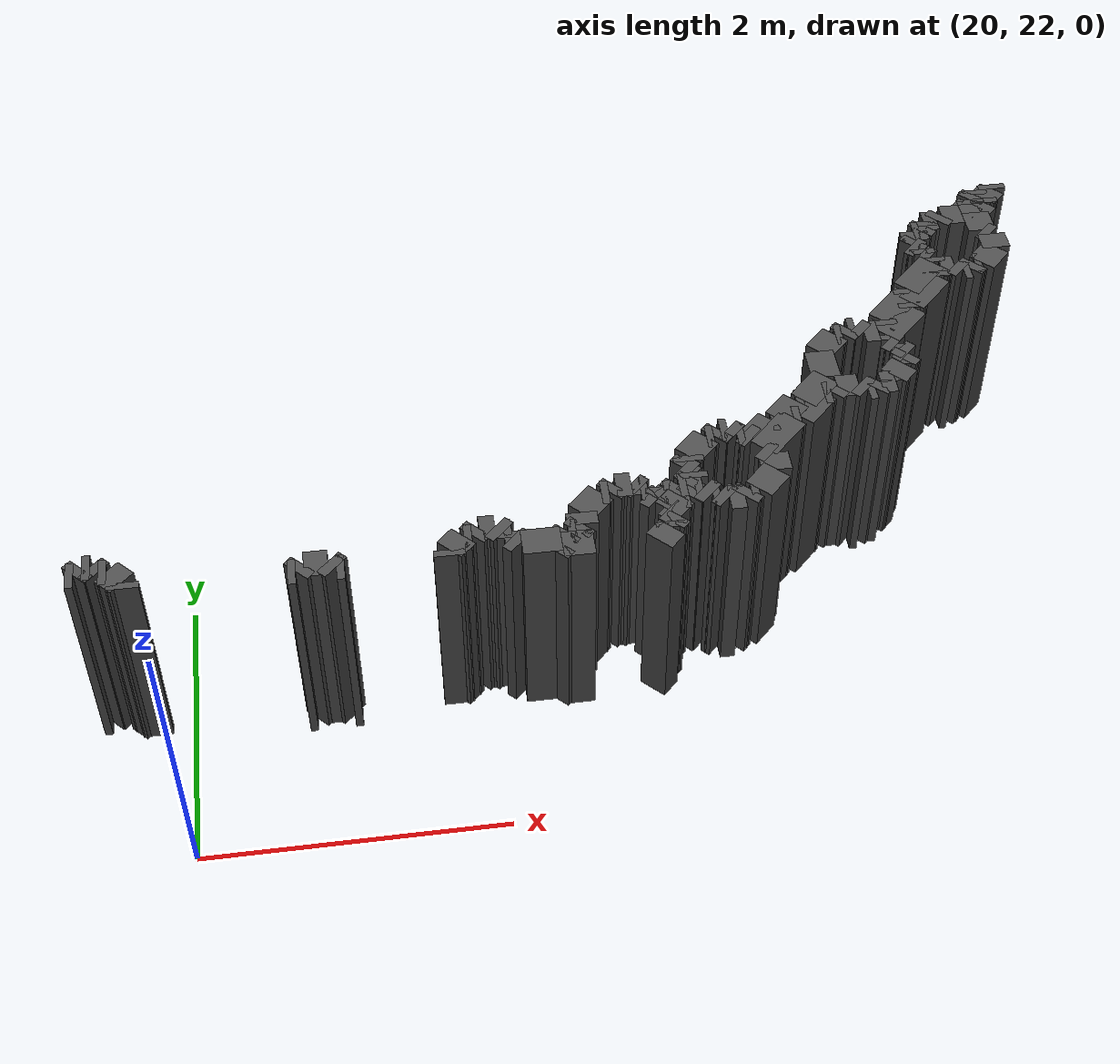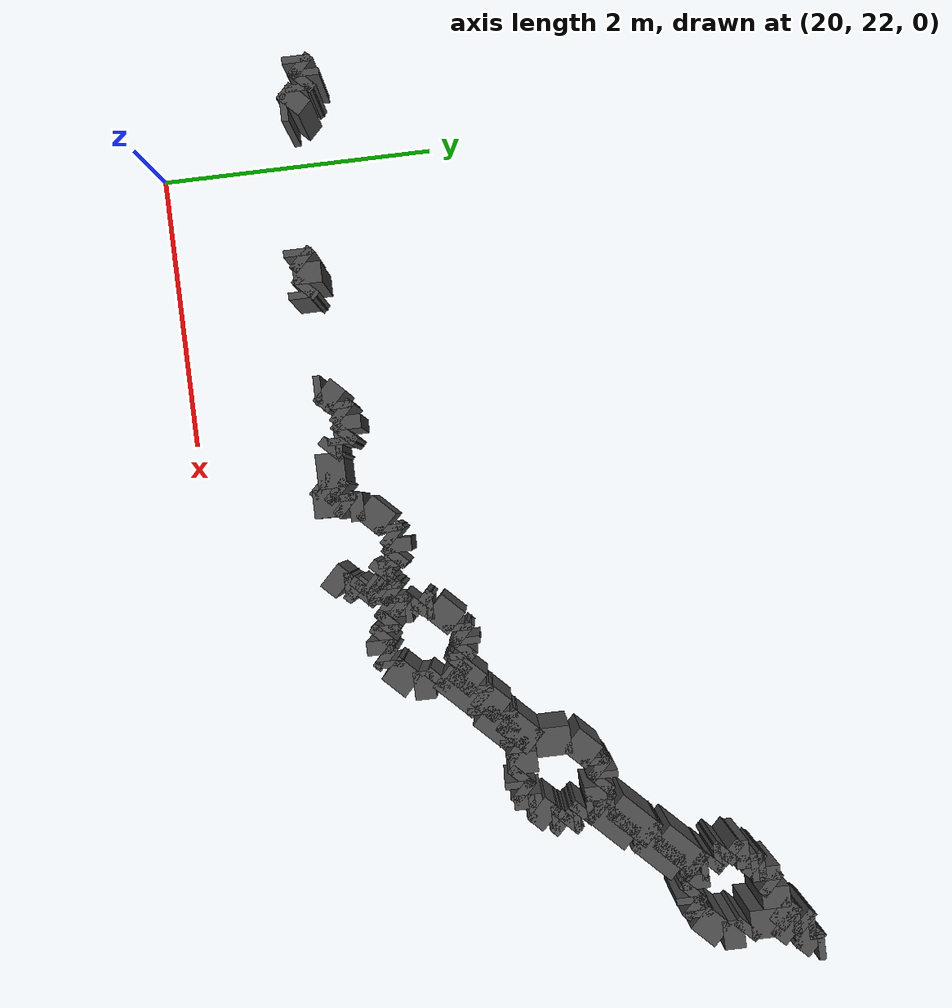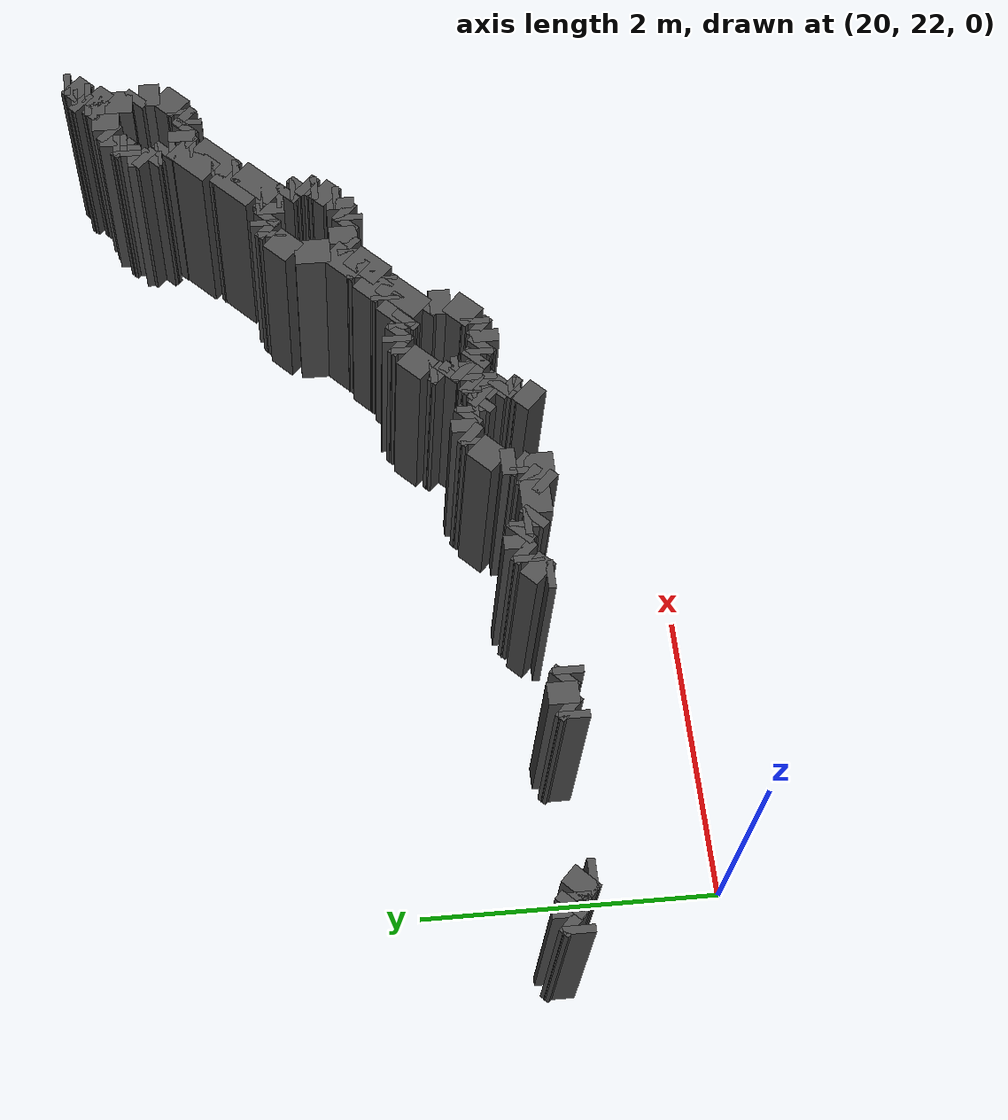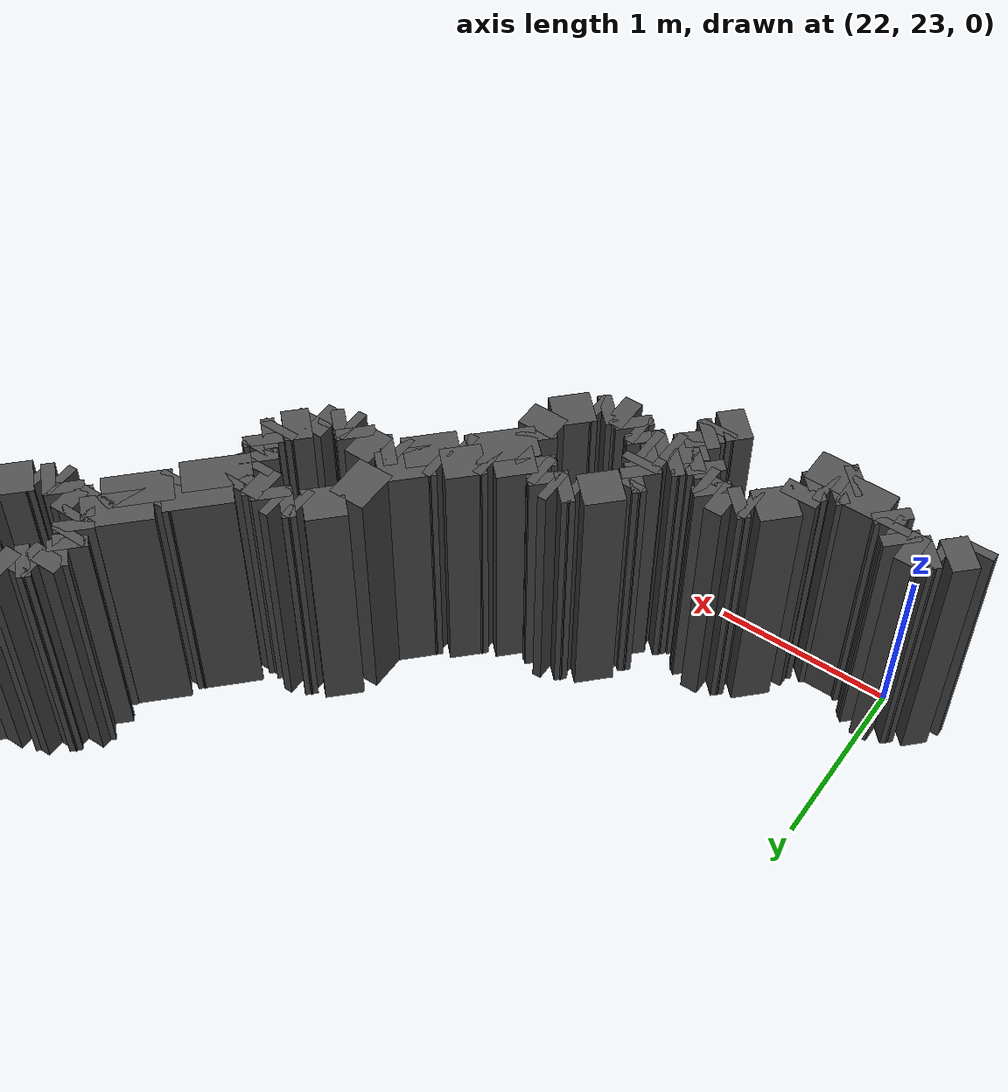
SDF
<sdf version="1.9">
 <model name="generated_walls">
  <static>true</static>
  <link name="wall_161_1902">
   <pose>19.425 23.150 0.75 0 0 0.000</pose>
   <collision name="collision"><geometry><box><size>0.050 0.2 1.5</size></box></geometry></collision>
   <visual name="visual">
    <geometry><box><size>0.050 0.2 1.5</size></box></geometry>
    <material><ambient>0.3 0.3 0.3 1</ambient></material>
   </visual>
  </link>
  <link name="wall_161_1903">
   <pose>19.475 23.175 0.75 0 0 0.785</pose>
   <collision name="collision"><geometry><box><size>0.071 0.2 1.5</size></box></geometry></collision>
   <visual name="visual">
    <geometry><box><size>0.071 0.2 1.5</size></box></geometry>
    <material><ambient>0.3 0.3 0.3 1</ambient></material>
   </visual>
  </link>
  <link name="wall_161_1904">
   <pose>19.525 23.200 0.75 0 0 0.000</pose>
   <collision name="collision"><geometry><box><size>0.050 0.2 1.5</size></box></geometry></collision>
   <visual name="visual">
    <geometry><box><size>0.050 0.2 1.5</size></box></geometry>
    <material><ambient>0.3 0.3 0.3 1</ambient></material>
   </visual>
  </link>
  <link name="wall_161_1905">
   <pose>19.575 23.175 0.75 0 0 -0.785</pose>
   <collision name="collision"><geometry><box><size>0.071 0.2 1.5</size></box></geometry></collision>
   <visual name="visual">
    <geometry><box><size>0.071 0.2 1.5</size></box></geometry>
    <material><ambient>0.3 0.3 0.3 1</ambient></material>
   </visual>
  </link>
  <link name="wall_161_1906">
   <pose>19.625 23.150 0.75 0 0 0.000</pose>
   <collision name="collision"><geometry><box><size>0.050 0.2 1.5</size></box></geometry></collision>
   <visual name="visual">
    <geometry><box><size>0.050 0.2 1.5</size></box></geometry>
    <material><ambient>0.3 0.3 0.3 1</ambient></material>
   </visual>
  </link>
  <link name="wall_161_1907">
   <pose>19.700 23.100 0.75 0 0 -0.785</pose>
   <collision name="collision"><geometry><box><size>0.141 0.2 1.5</size></box></geometry></collision>
   <visual name="visual">
    <geometry><box><size>0.141 0.2 1.5</size></box></geometry>
    <material><ambient>0.3 0.3 0.3 1</ambient></material>
   </visual>
  </link>
  <link name="wall_161_1908">
   <pose>19.750 23.025 0.75 0 0 -1.571</pose>
   <collision name="collision"><geometry><box><size>0.050 0.2 1.5</size></box></geometry></collision>
   <visual name="visual">
    <geometry><box><size>0.050 0.2 1.5</size></box></geometry>
    <material><ambient>0.3 0.3 0.3 1</ambient></material>
   </visual>
  </link>
  <link name="wall_161_1914">
   <pose>20.775 23.000 0.75 0 0 0.000</pose>
   <collision name="collision"><geometry><box><size>0.050 0.2 1.5</size></box></geometry></collision>
   <visual name="visual">
    <geometry><box><size>0.050 0.2 1.5</size></box></geometry>
    <material><ambient>0.3 0.3 0.3 1</ambient></material>
   </visual>
  </link>
  <link name="wall_161_1915">
   <pose>20.825 23.025 0.75 0 0 0.785</pose>
   <collision name="collision"><geometry><box><size>0.071 0.2 1.5</size></box></geometry></collision>
   <visual name="visual">
    <geometry><box><size>0.071 0.2 1.5</size></box></geometry>
    <material><ambient>0.3 0.3 0.3 1</ambient></material>
   </visual>
  </link>
  <link name="wall_161_1916">
   <pose>20.925 23.050 0.75 0 0 0.000</pose>
   <collision name="collision"><geometry><box><size>0.150 0.2 1.5</size></box></geometry></collision>
   <visual name="visual">
    <geometry><box><size>0.150 0.2 1.5</size></box></geometry>
    <material><ambient>0.3 0.3 0.3 1</ambient></material>
   </visual>
  </link>
  <link name="wall_161_1917">
   <pose>21.025 23.025 0.75 0 0 -0.785</pose>
   <collision name="collision"><geometry><box><size>0.071 0.2 1.5</size></box></geometry></collision>
   <visual name="visual">
    <geometry><box><size>0.071 0.2 1.5</size></box></geometry>
    <material><ambient>0.3 0.3 0.3 1</ambient></material>
   </visual>
  </link>
  <link name="wall_161_1918">
   <pose>21.075 23.000 0.75 0 0 0.000</pose>
   <collision name="collision"><geometry><box><size>0.050 0.2 1.5</size></box></geometry></collision>
   <visual name="visual">
    <geometry><box><size>0.050 0.2 1.5</size></box></geometry>
    <material><ambient>0.3 0.3 0.3 1</ambient></material>
   </visual>
  </link>
  <link name="wall_161_1926">
   <pose>21.750 23.025 0.75 0 0 1.571</pose>
   <collision name="collision"><geometry><box><size>0.050 0.2 1.5</size></box></geometry></collision>
   <visual name="visual">
    <geometry><box><size>0.050 0.2 1.5</size></box></geometry>
    <material><ambient>0.3 0.3 0.3 1</ambient></material>
   </visual>
  </link>
  <link name="wall_161_1927">
   <pose>21.800 23.100 0.75 0 0 0.785</pose>
   <collision name="collision"><geometry><box><size>0.141 0.2 1.5</size></box></geometry></collision>
   <visual name="visual">
    <geometry><box><size>0.141 0.2 1.5</size></box></geometry>
    <material><ambient>0.3 0.3 0.3 1</ambient></material>
   </visual>
  </link>
  <link name="wall_161_1928">
   <pose>21.875 23.150 0.75 0 0 0.000</pose>
   <collision name="collision"><geometry><box><size>0.050 0.2 1.5</size></box></geometry></collision>
   <visual name="visual">
    <geometry><box><size>0.050 0.2 1.5</size></box></geometry>
    <material><ambient>0.3 0.3 0.3 1</ambient></material>
   </visual>
  </link>
  <link name="wall_161_1929">
   <pose>21.925 23.175 0.75 0 0 0.785</pose>
   <collision name="collision"><geometry><box><size>0.071 0.2 1.5</size></box></geometry></collision>
   <visual name="visual">
    <geometry><box><size>0.071 0.2 1.5</size></box></geometry>
    <material><ambient>0.3 0.3 0.3 1</ambient></material>
   </visual>
  </link>
  <link name="wall_161_1930">
   <pose>22.000 23.200 0.75 0 0 0.000</pose>
   <collision name="collision"><geometry><box><size>0.100 0.2 1.5</size></box></geometry></collision>
   <visual name="visual">
    <geometry><box><size>0.100 0.2 1.5</size></box></geometry>
    <material><ambient>0.3 0.3 0.3 1</ambient></material>
   </visual>
  </link>
  <link name="wall_161_1931">
   <pose>22.075 23.175 0.75 0 0 -0.785</pose>
   <collision name="collision"><geometry><box><size>0.071 0.2 1.5</size></box></geometry></collision>
   <visual name="visual">
    <geometry><box><size>0.071 0.2 1.5</size></box></geometry>
    <material><ambient>0.3 0.3 0.3 1</ambient></material>
   </visual>
  </link>
  <link name="wall_161_1932">
   <pose>22.125 23.150 0.75 0 0 0.000</pose>
   <collision name="collision"><geometry><box><size>0.050 0.2 1.5</size></box></geometry></collision>
   <visual name="visual">
    <geometry><box><size>0.050 0.2 1.5</size></box></geometry>
    <material><ambient>0.3 0.3 0.3 1</ambient></material>
   </visual>
  </link>
  <link name="wall_161_1933">
   <pose>22.150 23.125 0.75 0 0 -1.571</pose>
   <collision name="collision"><geometry><box><size>0.050 0.2 1.5</size></box></geometry></collision>
   <visual name="visual">
    <geometry><box><size>0.050 0.2 1.5</size></box></geometry>
    <material><ambient>0.3 0.3 0.3 1</ambient></material>
   </visual>
  </link>
  <link name="wall_161_1934">
   <pose>22.175 23.075 0.75 0 0 -0.785</pose>
   <collision name="collision"><geometry><box><size>0.071 0.2 1.5</size></box></geometry></collision>
   <visual name="visual">
    <geometry><box><size>0.071 0.2 1.5</size></box></geometry>
    <material><ambient>0.3 0.3 0.3 1</ambient></material>
   </visual>
  </link>
  <link name="wall_161_1935">
   <pose>22.325 23.050 0.75 0 0 0.000</pose>
   <collision name="collision"><geometry><box><size>0.250 0.2 1.5</size></box></geometry></collision>
   <visual name="visual">
    <geometry><box><size>0.250 0.2 1.5</size></box></geometry>
    <material><ambient>0.3 0.3 0.3 1</ambient></material>
   </visual>
  </link>
  <link name="wall_161_1936">
   <pose>22.475 23.075 0.75 0 0 0.785</pose>
   <collision name="collision"><geometry><box><size>0.071 0.2 1.5</size></box></geometry></collision>
   <visual name="visual">
    <geometry><box><size>0.071 0.2 1.5</size></box></geometry>
    <material><ambient>0.3 0.3 0.3 1</ambient></material>
   </visual>
  </link>
  <link name="wall_161_1937">
   <pose>22.525 23.100 0.75 0 0 0.000</pose>
   <collision name="collision"><geometry><box><size>0.050 0.2 1.5</size></box></geometry></collision>
   <visual name="visual">
    <geometry><box><size>0.050 0.2 1.5</size></box></geometry>
    <material><ambient>0.3 0.3 0.3 1</ambient></material>
   </visual>
  </link>
  <link name="wall_161_1938">
   <pose>22.575 23.125 0.75 0 0 0.785</pose>
   <collision name="collision"><geometry><box><size>0.071 0.2 1.5</size></box></geometry></collision>
   <visual name="visual">
    <geometry><box><size>0.071 0.2 1.5</size></box></geometry>
    <material><ambient>0.3 0.3 0.3 1</ambient></material>
   </visual>
  </link>
  <link name="wall_161_1939">
   <pose>22.600 23.200 0.75 0 0 1.571</pose>
   <collision name="collision"><geometry><box><size>0.100 0.2 1.5</size></box></geometry></collision>
   <visual name="visual">
    <geometry><box><size>0.100 0.2 1.5</size></box></geometry>
    <material><ambient>0.3 0.3 0.3 1</ambient></material>
   </visual>
  </link>
  <link name="wall_161_1940">
   <pose>22.675 23.325 0.75 0 0 0.785</pose>
   <collision name="collision"><geometry><box><size>0.212 0.2 1.5</size></box></geometry></collision>
   <visual name="visual">
    <geometry><box><size>0.212 0.2 1.5</size></box></geometry>
    <material><ambient>0.3 0.3 0.3 1</ambient></material>
   </visual>
  </link>
  <link name="wall_161_1941">
   <pose>22.775 23.400 0.75 0 0 0.000</pose>
   <collision name="collision"><geometry><box><size>0.050 0.2 1.5</size></box></geometry></collision>
   <visual name="visual">
    <geometry><box><size>0.050 0.2 1.5</size></box></geometry>
    <material><ambient>0.3 0.3 0.3 1</ambient></material>
   </visual>
  </link>
  <link name="wall_161_1942">
   <pose>22.825 23.425 0.75 0 0 0.785</pose>
   <collision name="collision"><geometry><box><size>0.071 0.2 1.5</size></box></geometry></collision>
   <visual name="visual">
    <geometry><box><size>0.071 0.2 1.5</size></box></geometry>
    <material><ambient>0.3 0.3 0.3 1</ambient></material>
   </visual>
  </link>
  <link name="wall_161_1943">
   <pose>22.900 23.450 0.75 0 0 0.000</pose>
   <collision name="collision"><geometry><box><size>0.100 0.2 1.5</size></box></geometry></collision>
   <visual name="visual">
    <geometry><box><size>0.100 0.2 1.5</size></box></geometry>
    <material><ambient>0.3 0.3 0.3 1</ambient></material>
   </visual>
  </link>
  <link name="wall_161_1944">
   <pose>22.975 23.425 0.75 0 0 -0.785</pose>
   <collision name="collision"><geometry><box><size>0.071 0.2 1.5</size></box></geometry></collision>
   <visual name="visual">
    <geometry><box><size>0.071 0.2 1.5</size></box></geometry>
    <material><ambient>0.3 0.3 0.3 1</ambient></material>
   </visual>
  </link>
  <link name="wall_161_1945">
   <pose>23.025 23.400 0.75 0 0 0.000</pose>
   <collision name="collision"><geometry><box><size>0.050 0.2 1.5</size></box></geometry></collision>
   <visual name="visual">
    <geometry><box><size>0.050 0.2 1.5</size></box></geometry>
    <material><ambient>0.3 0.3 0.3 1</ambient></material>
   </visual>
  </link>
  <link name="wall_161_1946">
   <pose>23.050 23.375 0.75 0 0 -1.571</pose>
   <collision name="collision"><geometry><box><size>0.050 0.2 1.5</size></box></geometry></collision>
   <visual name="visual">
    <geometry><box><size>0.050 0.2 1.5</size></box></geometry>
    <material><ambient>0.3 0.3 0.3 1</ambient></material>
   </visual>
  </link>
  <link name="wall_161_1947">
   <pose>23.075 23.325 0.75 0 0 -0.785</pose>
   <collision name="collision"><geometry><box><size>0.071 0.2 1.5</size></box></geometry></collision>
   <visual name="visual">
    <geometry><box><size>0.071 0.2 1.5</size></box></geometry>
    <material><ambient>0.3 0.3 0.3 1</ambient></material>
   </visual>
  </link>
  <link name="wall_161_1948">
   <pose>23.125 23.325 0.75 0 0 0.785</pose>
   <collision name="collision"><geometry><box><size>0.071 0.2 1.5</size></box></geometry></collision>
   <visual name="visual">
    <geometry><box><size>0.071 0.2 1.5</size></box></geometry>
    <material><ambient>0.3 0.3 0.3 1</ambient></material>
   </visual>
  </link>
  <link name="wall_161_1949">
   <pose>23.175 23.350 0.75 0 0 0.000</pose>
   <collision name="collision"><geometry><box><size>0.050 0.2 1.5</size></box></geometry></collision>
   <visual name="visual">
    <geometry><box><size>0.050 0.2 1.5</size></box></geometry>
    <material><ambient>0.3 0.3 0.3 1</ambient></material>
   </visual>
  </link>
  <link name="wall_161_1950">
   <pose>23.225 23.375 0.75 0 0 0.785</pose>
   <collision name="collision"><geometry><box><size>0.071 0.2 1.5</size></box></geometry></collision>
   <visual name="visual">
    <geometry><box><size>0.071 0.2 1.5</size></box></geometry>
    <material><ambient>0.3 0.3 0.3 1</ambient></material>
   </visual>
  </link>
  <link name="wall_161_1951">
   <pose>23.275 23.400 0.75 0 0 0.000</pose>
   <collision name="collision"><geometry><box><size>0.050 0.2 1.5</size></box></geometry></collision>
   <visual name="visual">
    <geometry><box><size>0.050 0.2 1.5</size></box></geometry>
    <material><ambient>0.3 0.3 0.3 1</ambient></material>
   </visual>
  </link>
  <link name="wall_161_1952">
   <pose>23.325 23.425 0.75 0 0 0.785</pose>
   <collision name="collision"><geometry><box><size>0.071 0.2 1.5</size></box></geometry></collision>
   <visual name="visual">
    <geometry><box><size>0.071 0.2 1.5</size></box></geometry>
    <material><ambient>0.3 0.3 0.3 1</ambient></material>
   </visual>
  </link>
  <link name="wall_161_1953">
   <pose>23.350 23.475 0.75 0 0 1.571</pose>
   <collision name="collision"><geometry><box><size>0.050 0.2 1.5</size></box></geometry></collision>
   <visual name="visual">
    <geometry><box><size>0.050 0.2 1.5</size></box></geometry>
    <material><ambient>0.3 0.3 0.3 1</ambient></material>
   </visual>
  </link>
  <link name="wall_161_1954">
   <pose>23.325 23.525 0.75 0 0 2.356</pose>
   <collision name="collision"><geometry><box><size>0.071 0.2 1.5</size></box></geometry></collision>
   <visual name="visual">
    <geometry><box><size>0.071 0.2 1.5</size></box></geometry>
    <material><ambient>0.3 0.3 0.3 1</ambient></material>
   </visual>
  </link>
  <link name="wall_161_1955">
   <pose>23.325 23.575 0.75 0 0 0.785</pose>
   <collision name="collision"><geometry><box><size>0.071 0.2 1.5</size></box></geometry></collision>
   <visual name="visual">
    <geometry><box><size>0.071 0.2 1.5</size></box></geometry>
    <material><ambient>0.3 0.3 0.3 1</ambient></material>
   </visual>
  </link>
  <link name="wall_161_1956">
   <pose>23.350 23.625 0.75 0 0 1.571</pose>
   <collision name="collision"><geometry><box><size>0.050 0.2 1.5</size></box></geometry></collision>
   <visual name="visual">
    <geometry><box><size>0.050 0.2 1.5</size></box></geometry>
    <material><ambient>0.3 0.3 0.3 1</ambient></material>
   </visual>
  </link>
  <link name="wall_161_1957">
   <pose>23.425 23.725 0.75 0 0 0.785</pose>
   <collision name="collision"><geometry><box><size>0.212 0.2 1.5</size></box></geometry></collision>
   <visual name="visual">
    <geometry><box><size>0.212 0.2 1.5</size></box></geometry>
    <material><ambient>0.3 0.3 0.3 1</ambient></material>
   </visual>
  </link>
  <link name="wall_161_1958">
   <pose>23.525 23.800 0.75 0 0 0.000</pose>
   <collision name="collision"><geometry><box><size>0.050 0.2 1.5</size></box></geometry></collision>
   <visual name="visual">
    <geometry><box><size>0.050 0.2 1.5</size></box></geometry>
    <material><ambient>0.3 0.3 0.3 1</ambient></material>
   </visual>
  </link>
  <link name="wall_161_1959">
   <pose>23.575 23.825 0.75 0 0 0.785</pose>
   <collision name="collision"><geometry><box><size>0.071 0.2 1.5</size></box></geometry></collision>
   <visual name="visual">
    <geometry><box><size>0.071 0.2 1.5</size></box></geometry>
    <material><ambient>0.3 0.3 0.3 1</ambient></material>
   </visual>
  </link>
  <link name="wall_161_1960">
   <pose>23.625 23.850 0.75 0 0 0.000</pose>
   <collision name="collision"><geometry><box><size>0.050 0.2 1.5</size></box></geometry></collision>
   <visual name="visual">
    <geometry><box><size>0.050 0.2 1.5</size></box></geometry>
    <material><ambient>0.3 0.3 0.3 1</ambient></material>
   </visual>
  </link>
  <link name="wall_161_1961">
   <pose>23.675 23.825 0.75 0 0 -0.785</pose>
   <collision name="collision"><geometry><box><size>0.071 0.2 1.5</size></box></geometry></collision>
   <visual name="visual">
    <geometry><box><size>0.071 0.2 1.5</size></box></geometry>
    <material><ambient>0.3 0.3 0.3 1</ambient></material>
   </visual>
  </link>
  <link name="wall_161_1962">
   <pose>23.725 23.800 0.75 0 0 0.000</pose>
   <collision name="collision"><geometry><box><size>0.050 0.2 1.5</size></box></geometry></collision>
   <visual name="visual">
    <geometry><box><size>0.050 0.2 1.5</size></box></geometry>
    <material><ambient>0.3 0.3 0.3 1</ambient></material>
   </visual>
  </link>
  <link name="wall_161_1963">
   <pose>23.775 23.775 0.75 0 0 -0.785</pose>
   <collision name="collision"><geometry><box><size>0.071 0.2 1.5</size></box></geometry></collision>
   <visual name="visual">
    <geometry><box><size>0.071 0.2 1.5</size></box></geometry>
    <material><ambient>0.3 0.3 0.3 1</ambient></material>
   </visual>
  </link>
  <link name="wall_161_1964">
   <pose>23.875 23.825 0.75 0 0 0.785</pose>
   <collision name="collision"><geometry><box><size>0.212 0.2 1.5</size></box></geometry></collision>
   <visual name="visual">
    <geometry><box><size>0.212 0.2 1.5</size></box></geometry>
    <material><ambient>0.3 0.3 0.3 1</ambient></material>
   </visual>
  </link>
  <link name="wall_161_1965">
   <pose>23.975 23.900 0.75 0 0 0.000</pose>
   <collision name="collision"><geometry><box><size>0.050 0.2 1.5</size></box></geometry></collision>
   <visual name="visual">
    <geometry><box><size>0.050 0.2 1.5</size></box></geometry>
    <material><ambient>0.3 0.3 0.3 1</ambient></material>
   </visual>
  </link>
  <link name="wall_161_1966">
   <pose>24.075 23.975 0.75 0 0 0.785</pose>
   <collision name="collision"><geometry><box><size>0.212 0.2 1.5</size></box></geometry></collision>
   <visual name="visual">
    <geometry><box><size>0.212 0.2 1.5</size></box></geometry>
    <material><ambient>0.3 0.3 0.3 1</ambient></material>
   </visual>
  </link>
  <link name="wall_161_1967">
   <pose>24.175 24.050 0.75 0 0 0.000</pose>
   <collision name="collision"><geometry><box><size>0.050 0.2 1.5</size></box></geometry></collision>
   <visual name="visual">
    <geometry><box><size>0.050 0.2 1.5</size></box></geometry>
    <material><ambient>0.3 0.3 0.3 1</ambient></material>
   </visual>
  </link>
  <link name="wall_161_1968">
   <pose>24.300 24.150 0.75 0 0 0.785</pose>
   <collision name="collision"><geometry><box><size>0.283 0.2 1.5</size></box></geometry></collision>
   <visual name="visual">
    <geometry><box><size>0.283 0.2 1.5</size></box></geometry>
    <material><ambient>0.3 0.3 0.3 1</ambient></material>
   </visual>
  </link>
  <link name="wall_161_1969">
   <pose>24.400 24.375 0.75 0 0 1.571</pose>
   <collision name="collision"><geometry><box><size>0.250 0.2 1.5</size></box></geometry></collision>
   <visual name="visual">
    <geometry><box><size>0.250 0.2 1.5</size></box></geometry>
    <material><ambient>0.3 0.3 0.3 1</ambient></material>
   </visual>
  </link>
  <link name="wall_161_1970">
   <pose>24.475 24.575 0.75 0 0 0.785</pose>
   <collision name="collision"><geometry><box><size>0.212 0.2 1.5</size></box></geometry></collision>
   <visual name="visual">
    <geometry><box><size>0.212 0.2 1.5</size></box></geometry>
    <material><ambient>0.3 0.3 0.3 1</ambient></material>
   </visual>
  </link>
  <link name="wall_161_1971">
   <pose>24.575 24.650 0.75 0 0 0.000</pose>
   <collision name="collision"><geometry><box><size>0.050 0.2 1.5</size></box></geometry></collision>
   <visual name="visual">
    <geometry><box><size>0.050 0.2 1.5</size></box></geometry>
    <material><ambient>0.3 0.3 0.3 1</ambient></material>
   </visual>
  </link>
  <link name="wall_161_1972">
   <pose>24.625 24.675 0.75 0 0 0.785</pose>
   <collision name="collision"><geometry><box><size>0.071 0.2 1.5</size></box></geometry></collision>
   <visual name="visual">
    <geometry><box><size>0.071 0.2 1.5</size></box></geometry>
    <material><ambient>0.3 0.3 0.3 1</ambient></material>
   </visual>
  </link>
  <link name="wall_161_1973">
   <pose>24.675 24.700 0.75 0 0 0.000</pose>
   <collision name="collision"><geometry><box><size>0.050 0.2 1.5</size></box></geometry></collision>
   <visual name="visual">
    <geometry><box><size>0.050 0.2 1.5</size></box></geometry>
    <material><ambient>0.3 0.3 0.3 1</ambient></material>
   </visual>
  </link>
  <link name="wall_161_1974">
   <pose>24.725 24.675 0.75 0 0 -0.785</pose>
   <collision name="collision"><geometry><box><size>0.071 0.2 1.5</size></box></geometry></collision>
   <visual name="visual">
    <geometry><box><size>0.071 0.2 1.5</size></box></geometry>
    <material><ambient>0.3 0.3 0.3 1</ambient></material>
   </visual>
  </link>
  <link name="wall_161_1975">
   <pose>24.800 24.650 0.75 0 0 0.000</pose>
   <collision name="collision"><geometry><box><size>0.100 0.2 1.5</size></box></geometry></collision>
   <visual name="visual">
    <geometry><box><size>0.100 0.2 1.5</size></box></geometry>
    <material><ambient>0.3 0.3 0.3 1</ambient></material>
   </visual>
  </link>
  <link name="wall_161_1976">
   <pose>24.875 24.675 0.75 0 0 0.785</pose>
   <collision name="collision"><geometry><box><size>0.071 0.2 1.5</size></box></geometry></collision>
   <visual name="visual">
    <geometry><box><size>0.071 0.2 1.5</size></box></geometry>
    <material><ambient>0.3 0.3 0.3 1</ambient></material>
   </visual>
  </link>
  <link name="wall_161_1977">
   <pose>24.900 24.725 0.75 0 0 1.571</pose>
   <collision name="collision"><geometry><box><size>0.050 0.2 1.5</size></box></geometry></collision>
   <visual name="visual">
    <geometry><box><size>0.050 0.2 1.5</size></box></geometry>
    <material><ambient>0.3 0.3 0.3 1</ambient></material>
   </visual>
  </link>
  <link name="wall_161_1978">
   <pose>25.025 24.875 0.75 0 0 0.785</pose>
   <collision name="collision"><geometry><box><size>0.354 0.2 1.5</size></box></geometry></collision>
   <visual name="visual">
    <geometry><box><size>0.354 0.2 1.5</size></box></geometry>
    <material><ambient>0.3 0.3 0.3 1</ambient></material>
   </visual>
  </link>
  <link name="wall_161_1979">
   <pose>25.150 25.025 0.75 0 0 1.571</pose>
   <collision name="collision"><geometry><box><size>0.050 0.2 1.5</size></box></geometry></collision>
   <visual name="visual">
    <geometry><box><size>0.050 0.2 1.5</size></box></geometry>
    <material><ambient>0.3 0.3 0.3 1</ambient></material>
   </visual>
  </link>
  <link name="wall_161_1980">
   <pose>25.275 25.175 0.75 0 0 0.785</pose>
   <collision name="collision"><geometry><box><size>0.354 0.2 1.5</size></box></geometry></collision>
   <visual name="visual">
    <geometry><box><size>0.354 0.2 1.5</size></box></geometry>
    <material><ambient>0.3 0.3 0.3 1</ambient></material>
   </visual>
  </link>
  <link name="wall_161_1981">
   <pose>25.400 25.325 0.75 0 0 1.571</pose>
   <collision name="collision"><geometry><box><size>0.050 0.2 1.5</size></box></geometry></collision>
   <visual name="visual">
    <geometry><box><size>0.050 0.2 1.5</size></box></geometry>
    <material><ambient>0.3 0.3 0.3 1</ambient></material>
   </visual>
  </link>
  <link name="wall_161_1982">
   <pose>25.375 25.375 0.75 0 0 2.356</pose>
   <collision name="collision"><geometry><box><size>0.071 0.2 1.5</size></box></geometry></collision>
   <visual name="visual">
    <geometry><box><size>0.071 0.2 1.5</size></box></geometry>
    <material><ambient>0.3 0.3 0.3 1</ambient></material>
   </visual>
  </link>
  <link name="wall_161_1983">
   <pose>25.350 25.425 0.75 0 0 1.571</pose>
   <collision name="collision"><geometry><box><size>0.050 0.2 1.5</size></box></geometry></collision>
   <visual name="visual">
    <geometry><box><size>0.050 0.2 1.5</size></box></geometry>
    <material><ambient>0.3 0.3 0.3 1</ambient></material>
   </visual>
  </link>
  <link name="wall_161_1984">
   <pose>25.325 25.475 0.75 0 0 2.356</pose>
   <collision name="collision"><geometry><box><size>0.071 0.2 1.5</size></box></geometry></collision>
   <visual name="visual">
    <geometry><box><size>0.071 0.2 1.5</size></box></geometry>
    <material><ambient>0.3 0.3 0.3 1</ambient></material>
   </visual>
  </link>
  <link name="wall_161_1985">
   <pose>25.325 25.525 0.75 0 0 0.785</pose>
   <collision name="collision"><geometry><box><size>0.071 0.2 1.5</size></box></geometry></collision>
   <visual name="visual">
    <geometry><box><size>0.071 0.2 1.5</size></box></geometry>
    <material><ambient>0.3 0.3 0.3 1</ambient></material>
   </visual>
  </link>
  <link name="wall_161_1986">
   <pose>25.350 25.600 0.75 0 0 1.571</pose>
   <collision name="collision"><geometry><box><size>0.100 0.2 1.5</size></box></geometry></collision>
   <visual name="visual">
    <geometry><box><size>0.100 0.2 1.5</size></box></geometry>
    <material><ambient>0.3 0.3 0.3 1</ambient></material>
   </visual>
  </link>
  <link name="wall_161_1987">
   <pose>25.375 25.650 0.75 0 0 0.000</pose>
   <collision name="collision"><geometry><box><size>0.050 0.2 1.5</size></box></geometry></collision>
   <visual name="visual">
    <geometry><box><size>0.050 0.2 1.5</size></box></geometry>
    <material><ambient>0.3 0.3 0.3 1</ambient></material>
   </visual>
  </link>
  <link name="wall_161_1988">
   <pose>25.425 25.675 0.75 0 0 0.785</pose>
   <collision name="collision"><geometry><box><size>0.071 0.2 1.5</size></box></geometry></collision>
   <visual name="visual">
    <geometry><box><size>0.071 0.2 1.5</size></box></geometry>
    <material><ambient>0.3 0.3 0.3 1</ambient></material>
   </visual>
  </link>
  <link name="wall_161_1989">
   <pose>25.450 25.725 0.75 0 0 1.571</pose>
   <collision name="collision"><geometry><box><size>0.050 0.2 1.5</size></box></geometry></collision>
   <visual name="visual">
    <geometry><box><size>0.050 0.2 1.5</size></box></geometry>
    <material><ambient>0.3 0.3 0.3 1</ambient></material>
   </visual>
  </link>
  <link name="wall_161_1990">
   <pose>25.500 25.750 0.75 0 0 0.000</pose>
   <collision name="collision"><geometry><box><size>0.100 0.2 1.5</size></box></geometry></collision>
   <visual name="visual">
    <geometry><box><size>0.100 0.2 1.5</size></box></geometry>
    <material><ambient>0.3 0.3 0.3 1</ambient></material>
   </visual>
  </link>
  <link name="wall_161_1991">
   <pose>25.575 25.775 0.75 0 0 0.785</pose>
   <collision name="collision"><geometry><box><size>0.071 0.2 1.5</size></box></geometry></collision>
   <visual name="visual">
    <geometry><box><size>0.071 0.2 1.5</size></box></geometry>
    <material><ambient>0.3 0.3 0.3 1</ambient></material>
   </visual>
  </link>
  <link name="wall_161_1992">
   <pose>25.675 25.800 0.75 0 0 0.000</pose>
   <collision name="collision"><geometry><box><size>0.150 0.2 1.5</size></box></geometry></collision>
   <visual name="visual">
    <geometry><box><size>0.150 0.2 1.5</size></box></geometry>
    <material><ambient>0.3 0.3 0.3 1</ambient></material>
   </visual>
  </link>
  <link name="wall_161_1993">
   <pose>25.800 25.850 0.75 0 0 0.785</pose>
   <collision name="collision"><geometry><box><size>0.141 0.2 1.5</size></box></geometry></collision>
   <visual name="visual">
    <geometry><box><size>0.141 0.2 1.5</size></box></geometry>
    <material><ambient>0.3 0.3 0.3 1</ambient></material>
   </visual>
  </link>
  <link name="wall_161_1994">
   <pose>25.850 25.925 0.75 0 0 1.571</pose>
   <collision name="collision"><geometry><box><size>0.050 0.2 1.5</size></box></geometry></collision>
   <visual name="visual">
    <geometry><box><size>0.050 0.2 1.5</size></box></geometry>
    <material><ambient>0.3 0.3 0.3 1</ambient></material>
   </visual>
  </link>
  <link name="wall_161_1995">
   <pose>25.875 25.975 0.75 0 0 0.785</pose>
   <collision name="collision"><geometry><box><size>0.071 0.2 1.5</size></box></geometry></collision>
   <visual name="visual">
    <geometry><box><size>0.071 0.2 1.5</size></box></geometry>
    <material><ambient>0.3 0.3 0.3 1</ambient></material>
   </visual>
  </link>
  <link name="wall_161_1996">
   <pose>25.900 26.025 0.75 0 0 1.571</pose>
   <collision name="collision"><geometry><box><size>0.050 0.2 1.5</size></box></geometry></collision>
   <visual name="visual">
    <geometry><box><size>0.050 0.2 1.5</size></box></geometry>
    <material><ambient>0.3 0.3 0.3 1</ambient></material>
   </visual>
  </link>
  <link name="wall_161_2194">
   <pose>26.050 26.075 0.75 0 0 -1.571</pose>
   <collision name="collision"><geometry><box><size>0.050 0.2 1.5</size></box></geometry></collision>
   <visual name="visual">
    <geometry><box><size>0.050 0.2 1.5</size></box></geometry>
    <material><ambient>0.3 0.3 0.3 1</ambient></material>
   </visual>
  </link>
  <link name="wall_161_2195">
   <pose>26.000 26.000 0.75 0 0 -2.356</pose>
   <collision name="collision"><geometry><box><size>0.141 0.2 1.5</size></box></geometry></collision>
   <visual name="visual">
    <geometry><box><size>0.141 0.2 1.5</size></box></geometry>
    <material><ambient>0.3 0.3 0.3 1</ambient></material>
   </visual>
  </link>
  <link name="wall_161_2196">
   <pose>25.950 25.925 0.75 0 0 -1.571</pose>
   <collision name="collision"><geometry><box><size>0.050 0.2 1.5</size></box></geometry></collision>
   <visual name="visual">
    <geometry><box><size>0.050 0.2 1.5</size></box></geometry>
    <material><ambient>0.3 0.3 0.3 1</ambient></material>
   </visual>
  </link>
  <link name="wall_161_2197">
   <pose>25.900 25.850 0.75 0 0 -2.356</pose>
   <collision name="collision"><geometry><box><size>0.141 0.2 1.5</size></box></geometry></collision>
   <visual name="visual">
    <geometry><box><size>0.141 0.2 1.5</size></box></geometry>
    <material><ambient>0.3 0.3 0.3 1</ambient></material>
   </visual>
  </link>
  <link name="wall_161_2198">
   <pose>25.850 25.700 0.75 0 0 -1.571</pose>
   <collision name="collision"><geometry><box><size>0.200 0.2 1.5</size></box></geometry></collision>
   <visual name="visual">
    <geometry><box><size>0.200 0.2 1.5</size></box></geometry>
    <material><ambient>0.3 0.3 0.3 1</ambient></material>
   </visual>
  </link>
  <link name="wall_161_2199">
   <pose>25.875 25.575 0.75 0 0 -0.785</pose>
   <collision name="collision"><geometry><box><size>0.071 0.2 1.5</size></box></geometry></collision>
   <visual name="visual">
    <geometry><box><size>0.071 0.2 1.5</size></box></geometry>
    <material><ambient>0.3 0.3 0.3 1</ambient></material>
   </visual>
  </link>
  <link name="wall_161_2200">
   <pose>25.900 25.475 0.75 0 0 -1.571</pose>
   <collision name="collision"><geometry><box><size>0.150 0.2 1.5</size></box></geometry></collision>
   <visual name="visual">
    <geometry><box><size>0.150 0.2 1.5</size></box></geometry>
    <material><ambient>0.3 0.3 0.3 1</ambient></material>
   </visual>
  </link>
  <link name="wall_161_2201">
   <pose>25.825 25.325 0.75 0 0 -2.356</pose>
   <collision name="collision"><geometry><box><size>0.212 0.2 1.5</size></box></geometry></collision>
   <visual name="visual">
    <geometry><box><size>0.212 0.2 1.5</size></box></geometry>
    <material><ambient>0.3 0.3 0.3 1</ambient></material>
   </visual>
  </link>
  <link name="wall_161_2202">
   <pose>25.725 25.250 0.75 0 0 3.142</pose>
   <collision name="collision"><geometry><box><size>0.050 0.2 1.5</size></box></geometry></collision>
   <visual name="visual">
    <geometry><box><size>0.050 0.2 1.5</size></box></geometry>
    <material><ambient>0.3 0.3 0.3 1</ambient></material>
   </visual>
  </link>
  <link name="wall_161_2203">
   <pose>25.675 25.225 0.75 0 0 -2.356</pose>
   <collision name="collision"><geometry><box><size>0.071 0.2 1.5</size></box></geometry></collision>
   <visual name="visual">
    <geometry><box><size>0.071 0.2 1.5</size></box></geometry>
    <material><ambient>0.3 0.3 0.3 1</ambient></material>
   </visual>
  </link>
  <link name="wall_161_2204">
   <pose>25.625 25.200 0.75 0 0 3.142</pose>
   <collision name="collision"><geometry><box><size>0.050 0.2 1.5</size></box></geometry></collision>
   <visual name="visual">
    <geometry><box><size>0.050 0.2 1.5</size></box></geometry>
    <material><ambient>0.3 0.3 0.3 1</ambient></material>
   </visual>
  </link>
  <link name="wall_161_2205">
   <pose>25.575 25.225 0.75 0 0 2.356</pose>
   <collision name="collision"><geometry><box><size>0.071 0.2 1.5</size></box></geometry></collision>
   <visual name="visual">
    <geometry><box><size>0.071 0.2 1.5</size></box></geometry>
    <material><ambient>0.3 0.3 0.3 1</ambient></material>
   </visual>
  </link>
  <link name="wall_161_2206">
   <pose>25.500 25.250 0.75 0 0 3.142</pose>
   <collision name="collision"><geometry><box><size>0.100 0.2 1.5</size></box></geometry></collision>
   <visual name="visual">
    <geometry><box><size>0.100 0.2 1.5</size></box></geometry>
    <material><ambient>0.3 0.3 0.3 1</ambient></material>
   </visual>
  </link>
  <link name="wall_161_2207">
   <pose>25.425 25.225 0.75 0 0 -2.356</pose>
   <collision name="collision"><geometry><box><size>0.071 0.2 1.5</size></box></geometry></collision>
   <visual name="visual">
    <geometry><box><size>0.071 0.2 1.5</size></box></geometry>
    <material><ambient>0.3 0.3 0.3 1</ambient></material>
   </visual>
  </link>
  <link name="wall_161_2208">
   <pose>25.400 25.175 0.75 0 0 -1.571</pose>
   <collision name="collision"><geometry><box><size>0.050 0.2 1.5</size></box></geometry></collision>
   <visual name="visual">
    <geometry><box><size>0.050 0.2 1.5</size></box></geometry>
    <material><ambient>0.3 0.3 0.3 1</ambient></material>
   </visual>
  </link>
  <link name="wall_161_2209">
   <pose>25.275 25.025 0.75 0 0 -2.356</pose>
   <collision name="collision"><geometry><box><size>0.354 0.2 1.5</size></box></geometry></collision>
   <visual name="visual">
    <geometry><box><size>0.354 0.2 1.5</size></box></geometry>
    <material><ambient>0.3 0.3 0.3 1</ambient></material>
   </visual>
  </link>
  <link name="wall_161_2210">
   <pose>25.150 24.875 0.75 0 0 -1.571</pose>
   <collision name="collision"><geometry><box><size>0.050 0.2 1.5</size></box></geometry></collision>
   <visual name="visual">
    <geometry><box><size>0.050 0.2 1.5</size></box></geometry>
    <material><ambient>0.3 0.3 0.3 1</ambient></material>
   </visual>
  </link>
  <link name="wall_161_2211">
   <pose>25.025 24.725 0.75 0 0 -2.356</pose>
   <collision name="collision"><geometry><box><size>0.354 0.2 1.5</size></box></geometry></collision>
   <visual name="visual">
    <geometry><box><size>0.354 0.2 1.5</size></box></geometry>
    <material><ambient>0.3 0.3 0.3 1</ambient></material>
   </visual>
  </link>
  <link name="wall_161_2212">
   <pose>24.900 24.575 0.75 0 0 -1.571</pose>
   <collision name="collision"><geometry><box><size>0.050 0.2 1.5</size></box></geometry></collision>
   <visual name="visual">
    <geometry><box><size>0.050 0.2 1.5</size></box></geometry>
    <material><ambient>0.3 0.3 0.3 1</ambient></material>
   </visual>
  </link>
  <link name="wall_161_2213">
   <pose>24.925 24.525 0.75 0 0 -0.785</pose>
   <collision name="collision"><geometry><box><size>0.071 0.2 1.5</size></box></geometry></collision>
   <visual name="visual">
    <geometry><box><size>0.071 0.2 1.5</size></box></geometry>
    <material><ambient>0.3 0.3 0.3 1</ambient></material>
   </visual>
  </link>
  <link name="wall_161_2214">
   <pose>24.950 24.475 0.75 0 0 -1.571</pose>
   <collision name="collision"><geometry><box><size>0.050 0.2 1.5</size></box></geometry></collision>
   <visual name="visual">
    <geometry><box><size>0.050 0.2 1.5</size></box></geometry>
    <material><ambient>0.3 0.3 0.3 1</ambient></material>
   </visual>
  </link>
  <link name="wall_161_2215">
   <pose>24.975 24.425 0.75 0 0 -0.785</pose>
   <collision name="collision"><geometry><box><size>0.071 0.2 1.5</size></box></geometry></collision>
   <visual name="visual">
    <geometry><box><size>0.071 0.2 1.5</size></box></geometry>
    <material><ambient>0.3 0.3 0.3 1</ambient></material>
   </visual>
  </link>
  <link name="wall_161_2216">
   <pose>24.975 24.375 0.75 0 0 -2.356</pose>
   <collision name="collision"><geometry><box><size>0.071 0.2 1.5</size></box></geometry></collision>
   <visual name="visual">
    <geometry><box><size>0.071 0.2 1.5</size></box></geometry>
    <material><ambient>0.3 0.3 0.3 1</ambient></material>
   </visual>
  </link>
  <link name="wall_161_2217">
   <pose>24.950 24.325 0.75 0 0 -1.571</pose>
   <collision name="collision"><geometry><box><size>0.050 0.2 1.5</size></box></geometry></collision>
   <visual name="visual">
    <geometry><box><size>0.050 0.2 1.5</size></box></geometry>
    <material><ambient>0.3 0.3 0.3 1</ambient></material>
   </visual>
  </link>
  <link name="wall_161_2218">
   <pose>24.900 24.250 0.75 0 0 -2.356</pose>
   <collision name="collision"><geometry><box><size>0.141 0.2 1.5</size></box></geometry></collision>
   <visual name="visual">
    <geometry><box><size>0.141 0.2 1.5</size></box></geometry>
    <material><ambient>0.3 0.3 0.3 1</ambient></material>
   </visual>
  </link>
  <link name="wall_161_2219">
   <pose>24.850 24.175 0.75 0 0 -1.571</pose>
   <collision name="collision"><geometry><box><size>0.050 0.2 1.5</size></box></geometry></collision>
   <visual name="visual">
    <geometry><box><size>0.050 0.2 1.5</size></box></geometry>
    <material><ambient>0.3 0.3 0.3 1</ambient></material>
   </visual>
  </link>
  <link name="wall_161_2220">
   <pose>24.800 24.150 0.75 0 0 3.142</pose>
   <collision name="collision"><geometry><box><size>0.100 0.2 1.5</size></box></geometry></collision>
   <visual name="visual">
    <geometry><box><size>0.100 0.2 1.5</size></box></geometry>
    <material><ambient>0.3 0.3 0.3 1</ambient></material>
   </visual>
  </link>
  <link name="wall_161_2221">
   <pose>24.725 24.125 0.75 0 0 -2.356</pose>
   <collision name="collision"><geometry><box><size>0.071 0.2 1.5</size></box></geometry></collision>
   <visual name="visual">
    <geometry><box><size>0.071 0.2 1.5</size></box></geometry>
    <material><ambient>0.3 0.3 0.3 1</ambient></material>
   </visual>
  </link>
  <link name="wall_161_2222">
   <pose>24.675 24.100 0.75 0 0 3.142</pose>
   <collision name="collision"><geometry><box><size>0.050 0.2 1.5</size></box></geometry></collision>
   <visual name="visual">
    <geometry><box><size>0.050 0.2 1.5</size></box></geometry>
    <material><ambient>0.3 0.3 0.3 1</ambient></material>
   </visual>
  </link>
  <link name="wall_161_2223">
   <pose>24.625 24.125 0.75 0 0 2.356</pose>
   <collision name="collision"><geometry><box><size>0.071 0.2 1.5</size></box></geometry></collision>
   <visual name="visual">
    <geometry><box><size>0.071 0.2 1.5</size></box></geometry>
    <material><ambient>0.3 0.3 0.3 1</ambient></material>
   </visual>
  </link>
  <link name="wall_161_2224">
   <pose>24.525 24.150 0.75 0 0 3.142</pose>
   <collision name="collision"><geometry><box><size>0.150 0.2 1.5</size></box></geometry></collision>
   <visual name="visual">
    <geometry><box><size>0.150 0.2 1.5</size></box></geometry>
    <material><ambient>0.3 0.3 0.3 1</ambient></material>
   </visual>
  </link>
  <link name="wall_161_2225">
   <pose>24.425 24.125 0.75 0 0 -2.356</pose>
   <collision name="collision"><geometry><box><size>0.071 0.2 1.5</size></box></geometry></collision>
   <visual name="visual">
    <geometry><box><size>0.071 0.2 1.5</size></box></geometry>
    <material><ambient>0.3 0.3 0.3 1</ambient></material>
   </visual>
  </link>
  <link name="wall_161_2226">
   <pose>24.375 24.100 0.75 0 0 3.142</pose>
   <collision name="collision"><geometry><box><size>0.050 0.2 1.5</size></box></geometry></collision>
   <visual name="visual">
    <geometry><box><size>0.050 0.2 1.5</size></box></geometry>
    <material><ambient>0.3 0.3 0.3 1</ambient></material>
   </visual>
  </link>
  <link name="wall_161_2227">
   <pose>24.250 24.000 0.75 0 0 -2.356</pose>
   <collision name="collision"><geometry><box><size>0.283 0.2 1.5</size></box></geometry></collision>
   <visual name="visual">
    <geometry><box><size>0.283 0.2 1.5</size></box></geometry>
    <material><ambient>0.3 0.3 0.3 1</ambient></material>
   </visual>
  </link>
  <link name="wall_161_2228">
   <pose>24.125 23.900 0.75 0 0 3.142</pose>
   <collision name="collision"><geometry><box><size>0.050 0.2 1.5</size></box></geometry></collision>
   <visual name="visual">
    <geometry><box><size>0.050 0.2 1.5</size></box></geometry>
    <material><ambient>0.3 0.3 0.3 1</ambient></material>
   </visual>
  </link>
  <link name="wall_161_2229">
   <pose>23.975 23.775 0.75 0 0 -2.356</pose>
   <collision name="collision"><geometry><box><size>0.354 0.2 1.5</size></box></geometry></collision>
   <visual name="visual">
    <geometry><box><size>0.354 0.2 1.5</size></box></geometry>
    <material><ambient>0.3 0.3 0.3 1</ambient></material>
   </visual>
  </link>
  <link name="wall_161_2230">
   <pose>23.875 23.625 0.75 0 0 -0.785</pose>
   <collision name="collision"><geometry><box><size>0.071 0.2 1.5</size></box></geometry></collision>
   <visual name="visual">
    <geometry><box><size>0.071 0.2 1.5</size></box></geometry>
    <material><ambient>0.3 0.3 0.3 1</ambient></material>
   </visual>
  </link>
  <link name="wall_161_2231">
   <pose>23.900 23.525 0.75 0 0 -1.571</pose>
   <collision name="collision"><geometry><box><size>0.150 0.2 1.5</size></box></geometry></collision>
   <visual name="visual">
    <geometry><box><size>0.150 0.2 1.5</size></box></geometry>
    <material><ambient>0.3 0.3 0.3 1</ambient></material>
   </visual>
  </link>
  <link name="wall_161_2232">
   <pose>23.825 23.375 0.75 0 0 -2.356</pose>
   <collision name="collision"><geometry><box><size>0.212 0.2 1.5</size></box></geometry></collision>
   <visual name="visual">
    <geometry><box><size>0.212 0.2 1.5</size></box></geometry>
    <material><ambient>0.3 0.3 0.3 1</ambient></material>
   </visual>
  </link>
  <link name="wall_161_2233">
   <pose>23.725 23.300 0.75 0 0 3.142</pose>
   <collision name="collision"><geometry><box><size>0.050 0.2 1.5</size></box></geometry></collision>
   <visual name="visual">
    <geometry><box><size>0.050 0.2 1.5</size></box></geometry>
    <material><ambient>0.3 0.3 0.3 1</ambient></material>
   </visual>
  </link>
  <link name="wall_161_2234">
   <pose>23.675 23.275 0.75 0 0 -2.356</pose>
   <collision name="collision"><geometry><box><size>0.071 0.2 1.5</size></box></geometry></collision>
   <visual name="visual">
    <geometry><box><size>0.071 0.2 1.5</size></box></geometry>
    <material><ambient>0.3 0.3 0.3 1</ambient></material>
   </visual>
  </link>
  <link name="wall_161_2235">
   <pose>23.600 23.250 0.75 0 0 3.142</pose>
   <collision name="collision"><geometry><box><size>0.100 0.2 1.5</size></box></geometry></collision>
   <visual name="visual">
    <geometry><box><size>0.100 0.2 1.5</size></box></geometry>
    <material><ambient>0.3 0.3 0.3 1</ambient></material>
   </visual>
  </link>
  <link name="wall_161_2236">
   <pose>23.525 23.275 0.75 0 0 2.356</pose>
   <collision name="collision"><geometry><box><size>0.071 0.2 1.5</size></box></geometry></collision>
   <visual name="visual">
    <geometry><box><size>0.071 0.2 1.5</size></box></geometry>
    <material><ambient>0.3 0.3 0.3 1</ambient></material>
   </visual>
  </link>
  <link name="wall_161_2237">
   <pose>23.475 23.300 0.75 0 0 3.142</pose>
   <collision name="collision"><geometry><box><size>0.050 0.2 1.5</size></box></geometry></collision>
   <visual name="visual">
    <geometry><box><size>0.050 0.2 1.5</size></box></geometry>
    <material><ambient>0.3 0.3 0.3 1</ambient></material>
   </visual>
  </link>
  <link name="wall_161_2238">
   <pose>23.425 23.325 0.75 0 0 2.356</pose>
   <collision name="collision"><geometry><box><size>0.071 0.2 1.5</size></box></geometry></collision>
   <visual name="visual">
    <geometry><box><size>0.071 0.2 1.5</size></box></geometry>
    <material><ambient>0.3 0.3 0.3 1</ambient></material>
   </visual>
  </link>
  <link name="wall_161_2239">
   <pose>23.375 23.350 0.75 0 0 3.142</pose>
   <collision name="collision"><geometry><box><size>0.050 0.2 1.5</size></box></geometry></collision>
   <visual name="visual">
    <geometry><box><size>0.050 0.2 1.5</size></box></geometry>
    <material><ambient>0.3 0.3 0.3 1</ambient></material>
   </visual>
  </link>
  <link name="wall_161_2240">
   <pose>23.325 23.325 0.75 0 0 -2.356</pose>
   <collision name="collision"><geometry><box><size>0.071 0.2 1.5</size></box></geometry></collision>
   <visual name="visual">
    <geometry><box><size>0.071 0.2 1.5</size></box></geometry>
    <material><ambient>0.3 0.3 0.3 1</ambient></material>
   </visual>
  </link>
  <link name="wall_161_2241">
   <pose>23.275 23.300 0.75 0 0 3.142</pose>
   <collision name="collision"><geometry><box><size>0.050 0.2 1.5</size></box></geometry></collision>
   <visual name="visual">
    <geometry><box><size>0.050 0.2 1.5</size></box></geometry>
    <material><ambient>0.3 0.3 0.3 1</ambient></material>
   </visual>
  </link>
  <link name="wall_161_2242">
   <pose>23.200 23.250 0.75 0 0 -2.356</pose>
   <collision name="collision"><geometry><box><size>0.141 0.2 1.5</size></box></geometry></collision>
   <visual name="visual">
    <geometry><box><size>0.141 0.2 1.5</size></box></geometry>
    <material><ambient>0.3 0.3 0.3 1</ambient></material>
   </visual>
  </link>
  <link name="wall_161_2243">
   <pose>23.175 23.175 0.75 0 0 -0.785</pose>
   <collision name="collision"><geometry><box><size>0.071 0.2 1.5</size></box></geometry></collision>
   <visual name="visual">
    <geometry><box><size>0.071 0.2 1.5</size></box></geometry>
    <material><ambient>0.3 0.3 0.3 1</ambient></material>
   </visual>
  </link>
  <link name="wall_161_2244">
   <pose>23.175 23.125 0.75 0 0 -2.356</pose>
   <collision name="collision"><geometry><box><size>0.071 0.2 1.5</size></box></geometry></collision>
   <visual name="visual">
    <geometry><box><size>0.071 0.2 1.5</size></box></geometry>
    <material><ambient>0.3 0.3 0.3 1</ambient></material>
   </visual>
  </link>
  <link name="wall_161_2245">
   <pose>23.150 23.075 0.75 0 0 -1.571</pose>
   <collision name="collision"><geometry><box><size>0.050 0.2 1.5</size></box></geometry></collision>
   <visual name="visual">
    <geometry><box><size>0.050 0.2 1.5</size></box></geometry>
    <material><ambient>0.3 0.3 0.3 1</ambient></material>
   </visual>
  </link>
  <link name="wall_161_2246">
   <pose>23.100 23.000 0.75 0 0 -2.356</pose>
   <collision name="collision"><geometry><box><size>0.141 0.2 1.5</size></box></geometry></collision>
   <visual name="visual">
    <geometry><box><size>0.141 0.2 1.5</size></box></geometry>
    <material><ambient>0.3 0.3 0.3 1</ambient></material>
   </visual>
  </link>
  <link name="wall_161_2254">
   <pose>22.550 23.000 0.75 0 0 3.142</pose>
   <collision name="collision"><geometry><box><size>0.200 0.2 1.5</size></box></geometry></collision>
   <visual name="visual">
    <geometry><box><size>0.200 0.2 1.5</size></box></geometry>
    <material><ambient>0.3 0.3 0.3 1</ambient></material>
   </visual>
  </link>
  <link name="wall_161_2255">
   <pose>22.425 22.975 0.75 0 0 -2.356</pose>
   <collision name="collision"><geometry><box><size>0.071 0.2 1.5</size></box></geometry></collision>
   <visual name="visual">
    <geometry><box><size>0.071 0.2 1.5</size></box></geometry>
    <material><ambient>0.3 0.3 0.3 1</ambient></material>
   </visual>
  </link>
 </model>
</sdf>
